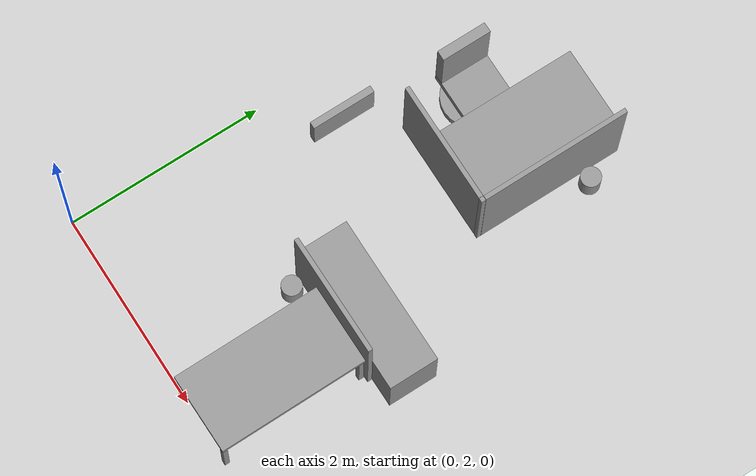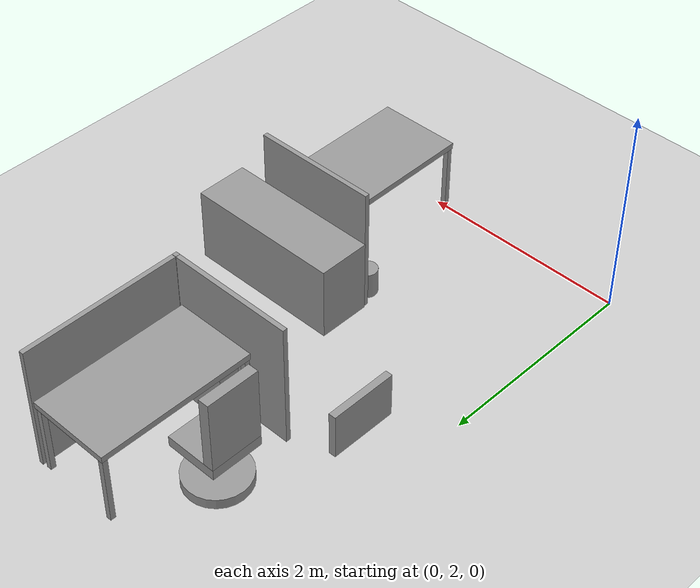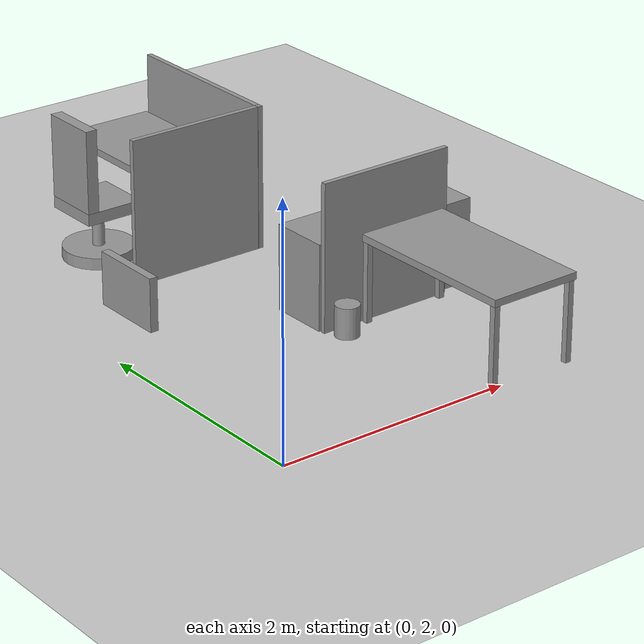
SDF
<sdf version="1.6">
 <world name="default">
  <model name="ground_plane">
   <static>1</static>
   <link name="link">
    <collision name="collision">
     <geometry><plane><normal>0 0 1</normal><size>100 100</size></plane></geometry>
     <surface><friction><ode><mu>100</mu><mu2>50</mu2></ode></friction></surface>
    </collision>
    <visual name="visual">
     <cast_shadows>0</cast_shadows>
     <geometry><plane><normal>0 0 1</normal><size>100 100</size></plane></geometry>
     <material>
      <script><uri>file://media/materials/scripts/gazebo.material</uri><name>Gazebo/Grey</name></script>
     </material>
    </visual>
   </link>
  </model>
  <model name="L8401_desk_clone_1">
   <link name="link_0">
    <pose>0.358907 -0.716347 -0.07 0 -0 3.14159</pose>
    <inertial>
     <mass>0.00540124</mass>
     <inertia>
      <ixx>0.00024509</ixx>
      <ixy>0</ixy>
      <ixz>0</ixz>
      <iyy>0.00024438</iyy>
      <iyz>0</iyz>
      <izz>6.68e-06</izz>
     </inertia>
    </inertial>
    <visual name="visual">
     <geometry><box><size>0.05 0.05 0.7</size></box></geometry>
     <material>
      <lighting>1</lighting>
      <script><uri>file://media/materials/scripts/gazebo.material</uri><name>Gazebo/Grey</name></script>
      <ambient>0.3 0.3 0.3 1</ambient>
      <diffuse>0.7 0.7 0.7 1</diffuse>
      <specular>0.01 0.01 0.01 1</specular>
      <emissive>0 0 0 1</emissive>
      <shader type="vertex"><normal_map>__default__</normal_map></shader>
     </material>
    </visual>
    <collision name="collision">
     <geometry><box><size>0.05 0.05 0.7</size></box></geometry>
     <surface>
      <friction>
       <ode><mu>1</mu><mu2>1</mu2><fdir1>0 0 0</fdir1><slip1>0</slip1><slip2>0</slip2></ode>
       <torsional>
        <coefficient>1</coefficient>
        <patch_radius>0</patch_radius>
        <surface_radius>0</surface_radius>
        <use_patch_radius>1</use_patch_radius>
        <ode><slip>0</slip></ode>
       </torsional>
      </friction>
      <bounce><restitution_coefficient>0</restitution_coefficient><threshold>1e+06</threshold></bounce>
      <contact>
       <collide_without_contact>0</collide_without_contact>
       <collide_without_contact_bitmask>1</collide_without_contact_bitmask>
       <collide_bitmask>1</collide_bitmask>
       <ode>
        <soft_cfm>0</soft_cfm>
        <soft_erp>0.2</soft_erp>
        <kp>1e+13</kp>
        <kd>1</kd>
        <max_vel>0.01</max_vel>
        <min_depth>0</min_depth>
       </ode>
       <bullet>
        <split_impulse>1</split_impulse>
        <split_impulse_penetration_threshold>-0.01</split_impulse_penetration_threshold>
        <soft_cfm>0</soft_cfm>
        <soft_erp>0.2</soft_erp>
        <kp>1e+13</kp>
        <kd>1</kd>
       </bullet>
      </contact>
     </surface>
    </collision>
   </link>
   <link name="link_0_clone">
    <pose>-0.368381 -0.716242 -0.07 0 -0 3.14159</pose>
    <inertial>
     <mass>0.00540124</mass>
     <inertia>
      <ixx>0.00024509</ixx>
      <ixy>0</ixy>
      <ixz>0</ixz>
      <iyy>0.00024438</iyy>
      <iyz>0</iyz>
      <izz>6.68e-06</izz>
     </inertia>
    </inertial>
    <visual name="visual">
     <geometry><box><size>0.05 0.05 0.7</size></box></geometry>
     <material>
      <lighting>1</lighting>
      <script><uri>file://media/materials/scripts/gazebo.material</uri><name>Gazebo/Grey</name></script>
      <ambient>0.3 0.3 0.3 1</ambient>
      <diffuse>0.7 0.7 0.7 1</diffuse>
      <specular>0.01 0.01 0.01 1</specular>
      <emissive>0 0 0 1</emissive>
      <shader type="vertex"><normal_map>__default__</normal_map></shader>
     </material>
    </visual>
    <collision name="collision">
     <geometry><box><size>0.05 0.05 0.7</size></box></geometry>
     <surface>
      <friction>
       <ode><mu>1</mu><mu2>1</mu2><fdir1>0 0 0</fdir1><slip1>0</slip1><slip2>0</slip2></ode>
       <torsional>
        <coefficient>1</coefficient>
        <patch_radius>0</patch_radius>
        <surface_radius>0</surface_radius>
        <use_patch_radius>1</use_patch_radius>
        <ode><slip>0</slip></ode>
       </torsional>
      </friction>
      <bounce><restitution_coefficient>0</restitution_coefficient><threshold>1e+06</threshold></bounce>
      <contact>
       <collide_without_contact>0</collide_without_contact>
       <collide_without_contact_bitmask>1</collide_without_contact_bitmask>
       <collide_bitmask>1</collide_bitmask>
       <ode>
        <soft_cfm>0</soft_cfm>
        <soft_erp>0.2</soft_erp>
        <kp>1e+13</kp>
        <kd>1</kd>
        <max_vel>0.01</max_vel>
        <min_depth>0</min_depth>
       </ode>
       <bullet>
        <split_impulse>1</split_impulse>
        <split_impulse_penetration_threshold>-0.01</split_impulse_penetration_threshold>
        <soft_cfm>0</soft_cfm>
        <soft_erp>0.2</soft_erp>
        <kp>1e+13</kp>
        <kd>1</kd>
       </bullet>
      </contact>
     </surface>
    </collision>
   </link>
   <link name="link_0_clone_0">
    <pose>-0.368174 0.719141 -0.07 0 -0 3.14159</pose>
    <inertial>
     <mass>0.00540124</mass>
     <inertia>
      <ixx>0.00024509</ixx>
      <ixy>0</ixy>
      <ixz>0</ixz>
      <iyy>0.00024438</iyy>
      <iyz>0</iyz>
      <izz>6.68e-06</izz>
     </inertia>
    </inertial>
    <visual name="visual">
     <geometry><box><size>0.05 0.05 0.7</size></box></geometry>
     <material>
      <lighting>1</lighting>
      <script><uri>file://media/materials/scripts/gazebo.material</uri><name>Gazebo/Grey</name></script>
      <ambient>0.3 0.3 0.3 1</ambient>
      <diffuse>0.7 0.7 0.7 1</diffuse>
      <specular>0.01 0.01 0.01 1</specular>
      <emissive>0 0 0 1</emissive>
      <shader type="vertex"><normal_map>__default__</normal_map></shader>
     </material>
    </visual>
    <collision name="collision">
     <geometry><box><size>0.05 0.05 0.7</size></box></geometry>
     <surface>
      <friction>
       <ode><mu>1</mu><mu2>1</mu2><fdir1>0 0 0</fdir1><slip1>0</slip1><slip2>0</slip2></ode>
       <torsional>
        <coefficient>1</coefficient>
        <patch_radius>0</patch_radius>
        <surface_radius>0</surface_radius>
        <use_patch_radius>1</use_patch_radius>
        <ode><slip>0</slip></ode>
       </torsional>
      </friction>
      <bounce><restitution_coefficient>0</restitution_coefficient><threshold>1e+06</threshold></bounce>
      <contact>
       <collide_without_contact>0</collide_without_contact>
       <collide_without_contact_bitmask>1</collide_without_contact_bitmask>
       <collide_bitmask>1</collide_bitmask>
       <ode>
        <soft_cfm>0</soft_cfm>
        <soft_erp>0.2</soft_erp>
        <kp>1e+13</kp>
        <kd>1</kd>
        <max_vel>0.01</max_vel>
        <min_depth>0</min_depth>
       </ode>
       <bullet>
        <split_impulse>1</split_impulse>
        <split_impulse_penetration_threshold>-0.01</split_impulse_penetration_threshold>
        <soft_cfm>0</soft_cfm>
        <soft_erp>0.2</soft_erp>
        <kp>1e+13</kp>
        <kd>1</kd>
       </bullet>
      </contact>
     </surface>
    </collision>
   </link>
   <link name="link_0_clone_1">
    <pose>0.359113 0.719037 -0.07 0 -0 3.14159</pose>
    <inertial>
     <mass>0.00540124</mass>
     <inertia>
      <ixx>0.00024509</ixx>
      <ixy>0</ixy>
      <ixz>0</ixz>
      <iyy>0.00024438</iyy>
      <iyz>0</iyz>
      <izz>6.68e-06</izz>
     </inertia>
    </inertial>
    <visual name="visual">
     <geometry><box><size>0.05 0.05 0.7</size></box></geometry>
     <material>
      <lighting>1</lighting>
      <script><uri>file://media/materials/scripts/gazebo.material</uri><name>Gazebo/Grey</name></script>
      <ambient>0.3 0.3 0.3 1</ambient>
      <diffuse>0.7 0.7 0.7 1</diffuse>
      <specular>0.01 0.01 0.01 1</specular>
      <emissive>0 0 0 1</emissive>
      <shader type="vertex"><normal_map>__default__</normal_map></shader>
     </material>
    </visual>
    <collision name="collision">
     <geometry><box><size>0.05 0.05 0.7</size></box></geometry>
     <surface>
      <friction>
       <ode><mu>1</mu><mu2>1</mu2><fdir1>0 0 0</fdir1><slip1>0</slip1><slip2>0</slip2></ode>
       <torsional>
        <coefficient>1</coefficient>
        <patch_radius>0</patch_radius>
        <surface_radius>0</surface_radius>
        <use_patch_radius>1</use_patch_radius>
        <ode><slip>0</slip></ode>
       </torsional>
      </friction>
      <bounce><restitution_coefficient>0</restitution_coefficient><threshold>1e+06</threshold></bounce>
      <contact>
       <collide_without_contact>0</collide_without_contact>
       <collide_without_contact_bitmask>1</collide_without_contact_bitmask>
       <collide_bitmask>1</collide_bitmask>
       <ode>
        <soft_cfm>0</soft_cfm>
        <soft_erp>0.2</soft_erp>
        <kp>1e+13</kp>
        <kd>1</kd>
        <max_vel>0.01</max_vel>
        <min_depth>0</min_depth>
       </ode>
       <bullet>
        <split_impulse>1</split_impulse>
        <split_impulse_penetration_threshold>-0.01</split_impulse_penetration_threshold>
        <soft_cfm>0</soft_cfm>
        <soft_erp>0.2</soft_erp>
        <kp>1e+13</kp>
        <kd>1</kd>
       </bullet>
      </contact>
     </surface>
    </collision>
   </link>
   <link name="link_1">
    <pose>-6e-05 0.001672 0.28 0 -0 0</pose>
    <inertial>
     <mass>0.0467165</mass>
     <inertia>
      <ixx>0.00864379</ixx>
      <ixy>0</ixy>
      <ixz>0</ixz>
      <iyy>0.00285842</iyy>
      <iyz>0</iyz>
      <izz>0.0114918</izz>
     </inertia>
    </inertial>
    <visual name="visual">
     <geometry><box><size>0.8 1.5 0.06</size></box></geometry>
     <material>
      <lighting>1</lighting>
      <script><uri>file://media/materials/scripts/gazebo.material</uri><name>Gazebo/Grey</name></script>
      <ambient>0.3 0.3 0.3 1</ambient>
      <diffuse>0.7 0.7 0.7 1</diffuse>
      <specular>0.01 0.01 0.01 1</specular>
      <emissive>0 0 0 1</emissive>
      <shader type="vertex"><normal_map>__default__</normal_map></shader>
     </material>
    </visual>
    <collision name="collision">
     <geometry><box><size>0.8 1.5 0.06</size></box></geometry>
     <surface>
      <friction>
       <ode><mu>1</mu><mu2>1</mu2><fdir1>0 0 0</fdir1><slip1>0</slip1><slip2>0</slip2></ode>
       <torsional>
        <coefficient>1</coefficient>
        <patch_radius>0</patch_radius>
        <surface_radius>0</surface_radius>
        <use_patch_radius>1</use_patch_radius>
        <ode><slip>0</slip></ode>
       </torsional>
      </friction>
      <bounce><restitution_coefficient>0</restitution_coefficient><threshold>1e+06</threshold></bounce>
      <contact>
       <collide_without_contact>0</collide_without_contact>
       <collide_without_contact_bitmask>1</collide_without_contact_bitmask>
       <collide_bitmask>1</collide_bitmask>
       <ode>
        <soft_cfm>0</soft_cfm>
        <soft_erp>0.2</soft_erp>
        <kp>1e+13</kp>
        <kd>1</kd>
        <max_vel>0.01</max_vel>
        <min_depth>0</min_depth>
       </ode>
       <bullet>
        <split_impulse>1</split_impulse>
        <split_impulse_penetration_threshold>-0.01</split_impulse_penetration_threshold>
        <soft_cfm>0</soft_cfm>
        <soft_erp>0.2</soft_erp>
        <kp>1e+13</kp>
        <kd>1</kd>
       </bullet>
      </contact>
     </surface>
    </collision>
   </link>
   <joint name="link_1_JOINT_0" type="fixed">
    <parent>link_1</parent>
    <child>link_0</child>
    <pose>0 0 0 -0.01 -0.02 -0.01</pose>
    <physics>
     <ode><limit><cfm>0</cfm><erp>0.2</erp></limit><suspension><cfm>0</cfm><erp>0.2</erp></suspension></ode>
    </physics>
   </joint>
   <joint name="link_1_JOINT_1" type="fixed">
    <parent>link_1</parent>
    <child>link_0_clone</child>
    <physics>
     <ode><limit><cfm>0</cfm><erp>0.2</erp></limit><suspension><cfm>0</cfm><erp>0.2</erp></suspension></ode>
    </physics>
   </joint>
   <joint name="link_1_JOINT_2" type="fixed">
    <parent>link_1</parent>
    <child>link_0_clone_1</child>
    <physics>
     <ode><limit><cfm>0</cfm><erp>0.2</erp></limit><suspension><cfm>0</cfm><erp>0.2</erp></suspension></ode>
    </physics>
   </joint>
   <joint name="link_1_JOINT_3" type="fixed">
    <parent>link_1</parent>
    <child>link_0_clone_0</child>
    <physics>
     <ode><limit><cfm>0</cfm><erp>0.2</erp></limit><suspension><cfm>0</cfm><erp>0.2</erp></suspension></ode>
    </physics>
   </joint>
   <static>1</static>
   <pose>2.27935 2.7194 0.419998 2e-06 2e-06 0.006835</pose>
  </model>
  <model name="L8401_desk_clone_4">
   <link name="link_0">
    <pose>0.358907 -0.716347 -0.07 0 -0 3.14159</pose>
    <inertial>
     <mass>0.00540124</mass>
     <inertia>
      <ixx>0.00024509</ixx>
      <ixy>0</ixy>
      <ixz>0</ixz>
      <iyy>0.00024438</iyy>
      <iyz>0</iyz>
      <izz>6.68e-06</izz>
     </inertia>
    </inertial>
    <visual name="visual">
     <geometry><box><size>0.05 0.05 0.7</size></box></geometry>
     <material>
      <lighting>1</lighting>
      <script><uri>file://media/materials/scripts/gazebo.material</uri><name>Gazebo/Grey</name></script>
      <ambient>0.3 0.3 0.3 1</ambient>
      <diffuse>0.7 0.7 0.7 1</diffuse>
      <specular>0.01 0.01 0.01 1</specular>
      <emissive>0 0 0 1</emissive>
      <shader type="vertex"><normal_map>__default__</normal_map></shader>
     </material>
    </visual>
    <collision name="collision">
     <geometry><box><size>0.05 0.05 0.7</size></box></geometry>
     <surface>
      <friction>
       <ode><mu>1</mu><mu2>1</mu2><fdir1>0 0 0</fdir1><slip1>0</slip1><slip2>0</slip2></ode>
       <torsional>
        <coefficient>1</coefficient>
        <patch_radius>0</patch_radius>
        <surface_radius>0</surface_radius>
        <use_patch_radius>1</use_patch_radius>
        <ode><slip>0</slip></ode>
       </torsional>
      </friction>
      <bounce><restitution_coefficient>0</restitution_coefficient><threshold>1e+06</threshold></bounce>
      <contact>
       <collide_without_contact>0</collide_without_contact>
       <collide_without_contact_bitmask>1</collide_without_contact_bitmask>
       <collide_bitmask>1</collide_bitmask>
       <ode>
        <soft_cfm>0</soft_cfm>
        <soft_erp>0.2</soft_erp>
        <kp>1e+13</kp>
        <kd>1</kd>
        <max_vel>0.01</max_vel>
        <min_depth>0</min_depth>
       </ode>
       <bullet>
        <split_impulse>1</split_impulse>
        <split_impulse_penetration_threshold>-0.01</split_impulse_penetration_threshold>
        <soft_cfm>0</soft_cfm>
        <soft_erp>0.2</soft_erp>
        <kp>1e+13</kp>
        <kd>1</kd>
       </bullet>
      </contact>
     </surface>
    </collision>
   </link>
   <link name="link_0_clone">
    <pose>-0.368381 -0.716242 -0.07 0 -0 3.14159</pose>
    <inertial>
     <mass>0.00540124</mass>
     <inertia>
      <ixx>0.00024509</ixx>
      <ixy>0</ixy>
      <ixz>0</ixz>
      <iyy>0.00024438</iyy>
      <iyz>0</iyz>
      <izz>6.68e-06</izz>
     </inertia>
    </inertial>
    <visual name="visual">
     <geometry><box><size>0.05 0.05 0.7</size></box></geometry>
     <material>
      <lighting>1</lighting>
      <script><uri>file://media/materials/scripts/gazebo.material</uri><name>Gazebo/Grey</name></script>
      <ambient>0.3 0.3 0.3 1</ambient>
      <diffuse>0.7 0.7 0.7 1</diffuse>
      <specular>0.01 0.01 0.01 1</specular>
      <emissive>0 0 0 1</emissive>
      <shader type="vertex"><normal_map>__default__</normal_map></shader>
     </material>
    </visual>
    <collision name="collision">
     <geometry><box><size>0.05 0.05 0.7</size></box></geometry>
     <surface>
      <friction>
       <ode><mu>1</mu><mu2>1</mu2><fdir1>0 0 0</fdir1><slip1>0</slip1><slip2>0</slip2></ode>
       <torsional>
        <coefficient>1</coefficient>
        <patch_radius>0</patch_radius>
        <surface_radius>0</surface_radius>
        <use_patch_radius>1</use_patch_radius>
        <ode><slip>0</slip></ode>
       </torsional>
      </friction>
      <bounce><restitution_coefficient>0</restitution_coefficient><threshold>1e+06</threshold></bounce>
      <contact>
       <collide_without_contact>0</collide_without_contact>
       <collide_without_contact_bitmask>1</collide_without_contact_bitmask>
       <collide_bitmask>1</collide_bitmask>
       <ode>
        <soft_cfm>0</soft_cfm>
        <soft_erp>0.2</soft_erp>
        <kp>1e+13</kp>
        <kd>1</kd>
        <max_vel>0.01</max_vel>
        <min_depth>0</min_depth>
       </ode>
       <bullet>
        <split_impulse>1</split_impulse>
        <split_impulse_penetration_threshold>-0.01</split_impulse_penetration_threshold>
        <soft_cfm>0</soft_cfm>
        <soft_erp>0.2</soft_erp>
        <kp>1e+13</kp>
        <kd>1</kd>
       </bullet>
      </contact>
     </surface>
    </collision>
   </link>
   <link name="link_0_clone_0">
    <pose>-0.368174 0.719141 -0.07 0 -0 3.14159</pose>
    <inertial>
     <mass>0.00540124</mass>
     <inertia>
      <ixx>0.00024509</ixx>
      <ixy>0</ixy>
      <ixz>0</ixz>
      <iyy>0.00024438</iyy>
      <iyz>0</iyz>
      <izz>6.68e-06</izz>
     </inertia>
    </inertial>
    <visual name="visual">
     <geometry><box><size>0.05 0.05 0.7</size></box></geometry>
     <material>
      <lighting>1</lighting>
      <script><uri>file://media/materials/scripts/gazebo.material</uri><name>Gazebo/Grey</name></script>
      <ambient>0.3 0.3 0.3 1</ambient>
      <diffuse>0.7 0.7 0.7 1</diffuse>
      <specular>0.01 0.01 0.01 1</specular>
      <emissive>0 0 0 1</emissive>
      <shader type="vertex"><normal_map>__default__</normal_map></shader>
     </material>
    </visual>
    <collision name="collision">
     <geometry><box><size>0.05 0.05 0.7</size></box></geometry>
     <surface>
      <friction>
       <ode><mu>1</mu><mu2>1</mu2><fdir1>0 0 0</fdir1><slip1>0</slip1><slip2>0</slip2></ode>
       <torsional>
        <coefficient>1</coefficient>
        <patch_radius>0</patch_radius>
        <surface_radius>0</surface_radius>
        <use_patch_radius>1</use_patch_radius>
        <ode><slip>0</slip></ode>
       </torsional>
      </friction>
      <bounce><restitution_coefficient>0</restitution_coefficient><threshold>1e+06</threshold></bounce>
      <contact>
       <collide_without_contact>0</collide_without_contact>
       <collide_without_contact_bitmask>1</collide_without_contact_bitmask>
       <collide_bitmask>1</collide_bitmask>
       <ode>
        <soft_cfm>0</soft_cfm>
        <soft_erp>0.2</soft_erp>
        <kp>1e+13</kp>
        <kd>1</kd>
        <max_vel>0.01</max_vel>
        <min_depth>0</min_depth>
       </ode>
       <bullet>
        <split_impulse>1</split_impulse>
        <split_impulse_penetration_threshold>-0.01</split_impulse_penetration_threshold>
        <soft_cfm>0</soft_cfm>
        <soft_erp>0.2</soft_erp>
        <kp>1e+13</kp>
        <kd>1</kd>
       </bullet>
      </contact>
     </surface>
    </collision>
   </link>
   <link name="link_0_clone_1">
    <pose>0.359113 0.719037 -0.07 0 -0 3.14159</pose>
    <inertial>
     <mass>0.00540124</mass>
     <inertia>
      <ixx>0.00024509</ixx>
      <ixy>0</ixy>
      <ixz>0</ixz>
      <iyy>0.00024438</iyy>
      <iyz>0</iyz>
      <izz>6.68e-06</izz>
     </inertia>
    </inertial>
    <visual name="visual">
     <geometry><box><size>0.05 0.05 0.7</size></box></geometry>
     <material>
      <lighting>1</lighting>
      <script><uri>file://media/materials/scripts/gazebo.material</uri><name>Gazebo/Grey</name></script>
      <ambient>0.3 0.3 0.3 1</ambient>
      <diffuse>0.7 0.7 0.7 1</diffuse>
      <specular>0.01 0.01 0.01 1</specular>
      <emissive>0 0 0 1</emissive>
      <shader type="vertex"><normal_map>__default__</normal_map></shader>
     </material>
    </visual>
    <collision name="collision">
     <geometry><box><size>0.05 0.05 0.7</size></box></geometry>
     <surface>
      <friction>
       <ode><mu>1</mu><mu2>1</mu2><fdir1>0 0 0</fdir1><slip1>0</slip1><slip2>0</slip2></ode>
       <torsional>
        <coefficient>1</coefficient>
        <patch_radius>0</patch_radius>
        <surface_radius>0</surface_radius>
        <use_patch_radius>1</use_patch_radius>
        <ode><slip>0</slip></ode>
       </torsional>
      </friction>
      <bounce><restitution_coefficient>0</restitution_coefficient><threshold>1e+06</threshold></bounce>
      <contact>
       <collide_without_contact>0</collide_without_contact>
       <collide_without_contact_bitmask>1</collide_without_contact_bitmask>
       <collide_bitmask>1</collide_bitmask>
       <ode>
        <soft_cfm>0</soft_cfm>
        <soft_erp>0.2</soft_erp>
        <kp>1e+13</kp>
        <kd>1</kd>
        <max_vel>0.01</max_vel>
        <min_depth>0</min_depth>
       </ode>
       <bullet>
        <split_impulse>1</split_impulse>
        <split_impulse_penetration_threshold>-0.01</split_impulse_penetration_threshold>
        <soft_cfm>0</soft_cfm>
        <soft_erp>0.2</soft_erp>
        <kp>1e+13</kp>
        <kd>1</kd>
       </bullet>
      </contact>
     </surface>
    </collision>
   </link>
   <link name="link_1">
    <pose>-6e-05 0.001672 0.28 0 -0 0</pose>
    <inertial>
     <mass>0.0467165</mass>
     <inertia>
      <ixx>0.00864379</ixx>
      <ixy>0</ixy>
      <ixz>0</ixz>
      <iyy>0.00285842</iyy>
      <iyz>0</iyz>
      <izz>0.0114918</izz>
     </inertia>
    </inertial>
    <visual name="visual">
     <geometry><box><size>0.8 1.5 0.06</size></box></geometry>
     <material>
      <lighting>1</lighting>
      <script><uri>file://media/materials/scripts/gazebo.material</uri><name>Gazebo/Grey</name></script>
      <ambient>0.3 0.3 0.3 1</ambient>
      <diffuse>0.7 0.7 0.7 1</diffuse>
      <specular>0.01 0.01 0.01 1</specular>
      <emissive>0 0 0 1</emissive>
      <shader type="vertex"><normal_map>__default__</normal_map></shader>
     </material>
    </visual>
    <collision name="collision">
     <geometry><box><size>0.8 1.5 0.06</size></box></geometry>
     <surface>
      <friction>
       <ode><mu>1</mu><mu2>1</mu2><fdir1>0 0 0</fdir1><slip1>0</slip1><slip2>0</slip2></ode>
       <torsional>
        <coefficient>1</coefficient>
        <patch_radius>0</patch_radius>
        <surface_radius>0</surface_radius>
        <use_patch_radius>1</use_patch_radius>
        <ode><slip>0</slip></ode>
       </torsional>
      </friction>
      <bounce><restitution_coefficient>0</restitution_coefficient><threshold>1e+06</threshold></bounce>
      <contact>
       <collide_without_contact>0</collide_without_contact>
       <collide_without_contact_bitmask>1</collide_without_contact_bitmask>
       <collide_bitmask>1</collide_bitmask>
       <ode>
        <soft_cfm>0</soft_cfm>
        <soft_erp>0.2</soft_erp>
        <kp>1e+13</kp>
        <kd>1</kd>
        <max_vel>0.01</max_vel>
        <min_depth>0</min_depth>
       </ode>
       <bullet>
        <split_impulse>1</split_impulse>
        <split_impulse_penetration_threshold>-0.01</split_impulse_penetration_threshold>
        <soft_cfm>0</soft_cfm>
        <soft_erp>0.2</soft_erp>
        <kp>1e+13</kp>
        <kd>1</kd>
       </bullet>
      </contact>
     </surface>
    </collision>
   </link>
   <joint name="link_1_JOINT_0" type="fixed">
    <parent>link_1</parent>
    <child>link_0</child>
    <pose>0 0 0 -0.01 -0.02 -0.01</pose>
    <physics>
     <ode><limit><cfm>0</cfm><erp>0.2</erp></limit><suspension><cfm>0</cfm><erp>0.2</erp></suspension></ode>
    </physics>
   </joint>
   <joint name="link_1_JOINT_1" type="fixed">
    <parent>link_1</parent>
    <child>link_0_clone</child>
    <physics>
     <ode><limit><cfm>0</cfm><erp>0.2</erp></limit><suspension><cfm>0</cfm><erp>0.2</erp></suspension></ode>
    </physics>
   </joint>
   <joint name="link_1_JOINT_2" type="fixed">
    <parent>link_1</parent>
    <child>link_0_clone_1</child>
    <physics>
     <ode><limit><cfm>0</cfm><erp>0.2</erp></limit><suspension><cfm>0</cfm><erp>0.2</erp></suspension></ode>
    </physics>
   </joint>
   <joint name="link_1_JOINT_3" type="fixed">
    <parent>link_1</parent>
    <child>link_0_clone_0</child>
    <physics>
     <ode><limit><cfm>0</cfm><erp>0.2</erp></limit><suspension><cfm>0</cfm><erp>0.2</erp></suspension></ode>
    </physics>
   </joint>
   <static>1</static>
   <pose>1.65203 5.83864 0.420003 3e-06 2e-06 -0.00181</pose>
  </model>
  <model name="L8401_panel_B_0_clone_1">
   <link name="link_0">
    <pose>0 0 0 0 -0 1.57</pose>
    <inertial>
     <mass>1</mass>
     <inertia>
      <ixx>0.166667</ixx>
      <ixy>0</ixy>
      <ixz>0</ixz>
      <iyy>0.166667</iyy>
      <iyz>0</iyz>
      <izz>0.166667</izz>
     </inertia>
    </inertial>
    <visual name="visual">
     <geometry><box><size>1.5 0.045 1.23</size></box></geometry>
     <material>
      <lighting>1</lighting>
      <script><uri>file://media/materials/scripts/gazebo.material</uri><name>Gazebo/Grey</name></script>
      <ambient>0.3 0.3 0.3 1</ambient>
      <diffuse>0.7 0.7 0.7 1</diffuse>
      <specular>0.01 0.01 0.01 1</specular>
      <emissive>0 0 0 1</emissive>
      <shader type="vertex"><normal_map>__default__</normal_map></shader>
     </material>
    </visual>
    <collision name="collision">
     <geometry><box><size>1.5 0.045 1.23</size></box></geometry>
     <surface>
      <friction>
       <ode><mu>1</mu><mu2>1</mu2><fdir1>0 0 0</fdir1><slip1>0</slip1><slip2>0</slip2></ode>
       <torsional>
        <coefficient>1</coefficient>
        <patch_radius>0</patch_radius>
        <surface_radius>0</surface_radius>
        <use_patch_radius>1</use_patch_radius>
        <ode><slip>0</slip></ode>
       </torsional>
      </friction>
      <bounce><restitution_coefficient>0</restitution_coefficient><threshold>1e+06</threshold></bounce>
      <contact>
       <collide_without_contact>0</collide_without_contact>
       <collide_without_contact_bitmask>1</collide_without_contact_bitmask>
       <collide_bitmask>1</collide_bitmask>
       <ode>
        <soft_cfm>0</soft_cfm>
        <soft_erp>0.2</soft_erp>
        <kp>1e+13</kp>
        <kd>1</kd>
        <max_vel>0.01</max_vel>
        <min_depth>0</min_depth>
       </ode>
       <bullet>
        <split_impulse>1</split_impulse>
        <split_impulse_penetration_threshold>-0.01</split_impulse_penetration_threshold>
        <soft_cfm>0</soft_cfm>
        <soft_erp>0.2</soft_erp>
        <kp>1e+13</kp>
        <kd>1</kd>
       </bullet>
      </contact>
     </surface>
    </collision>
   </link>
   <static>1</static>
   <pose>2.09722 5.84075 0.615 0 -0 0.0005</pose>
  </model>
  <model name="L8401_panel_A_0_clone_0">
   <link name="link_0">
    <inertial>
     <mass>1</mass>
     <inertia>
      <ixx>0.166667</ixx>
      <ixy>0</ixy>
      <ixz>0</ixz>
      <iyy>0.166667</iyy>
      <iyz>0</iyz>
      <izz>0.166667</izz>
     </inertia>
    </inertial>
    <visual name="visual">
     <geometry><box><size>1.2 0.045 1.23</size></box></geometry>
     <material>
      <lighting>1</lighting>
      <script><uri>file://media/materials/scripts/gazebo.material</uri><name>Gazebo/Grey</name></script>
      <ambient>0.3 0.3 0.3 1</ambient>
      <diffuse>0.7 0.7 0.7 1</diffuse>
      <specular>0.01 0.01 0.01 1</specular>
      <emissive>0 0 0 1</emissive>
      <shader type="vertex"><normal_map>__default__</normal_map></shader>
     </material>
    </visual>
    <collision name="collision">
     <geometry><box><size>1.2 0.045 1.23</size></box></geometry>
     <surface>
      <friction>
       <ode><mu>1</mu><mu2>1</mu2><fdir1>0 0 0</fdir1><slip1>0</slip1><slip2>0</slip2></ode>
       <torsional>
        <coefficient>1</coefficient>
        <patch_radius>0</patch_radius>
        <surface_radius>0</surface_radius>
        <use_patch_radius>1</use_patch_radius>
        <ode><slip>0</slip></ode>
       </torsional>
      </friction>
      <bounce><restitution_coefficient>0</restitution_coefficient><threshold>1e+06</threshold></bounce>
      <contact>
       <collide_without_contact>0</collide_without_contact>
       <collide_without_contact_bitmask>1</collide_without_contact_bitmask>
       <collide_bitmask>1</collide_bitmask>
       <ode>
        <soft_cfm>0</soft_cfm>
        <soft_erp>0.2</soft_erp>
        <kp>1e+13</kp>
        <kd>1</kd>
        <max_vel>0.01</max_vel>
        <min_depth>0</min_depth>
       </ode>
       <bullet>
        <split_impulse>1</split_impulse>
        <split_impulse_penetration_threshold>-0.01</split_impulse_penetration_threshold>
        <soft_cfm>0</soft_cfm>
        <soft_erp>0.2</soft_erp>
        <kp>1e+13</kp>
        <kd>1</kd>
       </bullet>
      </contact>
     </surface>
    </collision>
   </link>
   <static>1</static>
   <pose>2.1146 3.4938 0.614998 2e-06 -3e-06 0.005175</pose>
  </model>
  <model name="L8401_panel_A_0_clone_2">
   <link name="link_0">
    <inertial>
     <mass>1</mass>
     <inertia>
      <ixx>0.166667</ixx>
      <ixy>0</ixy>
      <ixz>0</ixz>
      <iyy>0.166667</iyy>
      <iyz>0</iyz>
      <izz>0.166667</izz>
     </inertia>
    </inertial>
    <visual name="visual">
     <geometry><box><size>1.2 0.045 1.23</size></box></geometry>
     <material>
      <lighting>1</lighting>
      <script><uri>file://media/materials/scripts/gazebo.material</uri><name>Gazebo/Grey</name></script>
      <ambient>0.3 0.3 0.3 1</ambient>
      <diffuse>0.7 0.7 0.7 1</diffuse>
      <specular>0.01 0.01 0.01 1</specular>
      <emissive>0 0 0 1</emissive>
      <shader type="vertex"><normal_map>__default__</normal_map></shader>
     </material>
    </visual>
    <collision name="collision">
     <geometry><box><size>1.2 0.045 1.23</size></box></geometry>
     <surface>
      <friction>
       <ode><mu>1</mu><mu2>1</mu2><fdir1>0 0 0</fdir1><slip1>0</slip1><slip2>0</slip2></ode>
       <torsional>
        <coefficient>1</coefficient>
        <patch_radius>0</patch_radius>
        <surface_radius>0</surface_radius>
        <use_patch_radius>1</use_patch_radius>
        <ode><slip>0</slip></ode>
       </torsional>
      </friction>
      <bounce><restitution_coefficient>0</restitution_coefficient><threshold>1e+06</threshold></bounce>
      <contact>
       <collide_without_contact>0</collide_without_contact>
       <collide_without_contact_bitmask>1</collide_without_contact_bitmask>
       <collide_bitmask>1</collide_bitmask>
       <ode>
        <soft_cfm>0</soft_cfm>
        <soft_erp>0.2</soft_erp>
        <kp>1e+13</kp>
        <kd>1</kd>
        <max_vel>0.01</max_vel>
        <min_depth>0</min_depth>
       </ode>
       <bullet>
        <split_impulse>1</split_impulse>
        <split_impulse_penetration_threshold>-0.01</split_impulse_penetration_threshold>
        <soft_cfm>0</soft_cfm>
        <soft_erp>0.2</soft_erp>
        <kp>1e+13</kp>
        <kd>1</kd>
       </bullet>
      </contact>
     </surface>
    </collision>
   </link>
   <static>1</static>
   <pose>1.4722 5.06743 0.614991 2e-06 0 -0.000597</pose>
  </model>
  <model name="L8401_panel_C_0_clone_1">
   <link name="link_0">
    <inertial>
     <mass>1</mass>
     <inertia>
      <ixx>0.166667</ixx>
      <ixy>0</ixy>
      <ixz>0</ixz>
      <iyy>0.166667</iyy>
      <iyz>0</iyz>
      <izz>0.166667</izz>
     </inertia>
    </inertial>
    <visual name="visual">
     <geometry><box><size>0.045 0.045 1.23</size></box></geometry>
     <material>
      <lighting>1</lighting>
      <script><uri>file://media/materials/scripts/gazebo.material</uri><name>Gazebo/Grey</name></script>
      <ambient>0.3 0.3 0.3 1</ambient>
      <diffuse>0.7 0.7 0.7 1</diffuse>
      <specular>0.01 0.01 0.01 1</specular>
      <emissive>0 0 0 1</emissive>
      <shader type="vertex"><normal_map>__default__</normal_map></shader>
     </material>
    </visual>
    <collision name="collision">
     <geometry><box><size>0.045 0.045 1.23</size></box></geometry>
     <surface>
      <friction>
       <ode><mu>1</mu><mu2>1</mu2><fdir1>0 0 0</fdir1><slip1>0</slip1><slip2>0</slip2></ode>
       <torsional>
        <coefficient>1</coefficient>
        <patch_radius>0</patch_radius>
        <surface_radius>0</surface_radius>
        <use_patch_radius>1</use_patch_radius>
        <ode><slip>0</slip></ode>
       </torsional>
      </friction>
      <bounce><restitution_coefficient>0</restitution_coefficient><threshold>1e+06</threshold></bounce>
      <contact>
       <collide_without_contact>0</collide_without_contact>
       <collide_without_contact_bitmask>1</collide_without_contact_bitmask>
       <collide_bitmask>1</collide_bitmask>
       <ode>
        <soft_cfm>0</soft_cfm>
        <soft_erp>0.2</soft_erp>
        <kp>1e+13</kp>
        <kd>1</kd>
        <max_vel>0.01</max_vel>
        <min_depth>0</min_depth>
       </ode>
       <bullet>
        <split_impulse>1</split_impulse>
        <split_impulse_penetration_threshold>-0.01</split_impulse_penetration_threshold>
        <soft_cfm>0</soft_cfm>
        <soft_erp>0.2</soft_erp>
        <kp>1e+13</kp>
        <kd>1</kd>
       </bullet>
      </contact>
     </surface>
    </collision>
   </link>
   <static>1</static>
   <pose>2.0967 5.0664 0.615 1.1e-05 3e-06 0.000411</pose>
  </model>
  <model name="L8401_drawer_C">
   <link name="link">
    <inertial>
     <mass>1</mass>
     <inertia>
      <ixx>0.166667</ixx>
      <ixy>0</ixy>
      <ixz>0</ixz>
      <iyy>0.166667</iyy>
      <iyz>0</iyz>
      <izz>0.166667</izz>
     </inertia>
    </inertial>
    <visual name="visual">
     <geometry><box><size>1.5 0.5 0.72</size></box></geometry>
     <material>
      <script><name>Gazebo/Grey</name><uri>file://media/materials/scripts/gazebo.material</uri></script>
      <ambient>0.3 0.3 0.3 1</ambient>
      <diffuse>0.7 0.7 0.7 1</diffuse>
      <specular>0.01 0.01 0.01 1</specular>
      <emissive>0 0 0 1</emissive>
      <shader type="vertex"><normal_map>__default__</normal_map></shader>
     </material>
    </visual>
    <collision name="collision">
     <geometry><box><size>1.5 0.5 0.72</size></box></geometry>
     <surface>
      <friction>
       <ode><mu>1</mu><mu2>1</mu2><fdir1>0 0 0</fdir1><slip1>0</slip1><slip2>0</slip2></ode>
       <torsional>
        <coefficient>1</coefficient>
        <patch_radius>0</patch_radius>
        <surface_radius>0</surface_radius>
        <use_patch_radius>1</use_patch_radius>
        <ode><slip>0</slip></ode>
       </torsional>
      </friction>
      <bounce><restitution_coefficient>0</restitution_coefficient><threshold>1e+06</threshold></bounce>
      <contact>
       <collide_without_contact>0</collide_without_contact>
       <collide_without_contact_bitmask>1</collide_without_contact_bitmask>
       <collide_bitmask>1</collide_bitmask>
       <ode>
        <soft_cfm>0</soft_cfm>
        <soft_erp>0.2</soft_erp>
        <kp>1e+13</kp>
        <kd>1</kd>
        <max_vel>0.01</max_vel>
        <min_depth>0</min_depth>
       </ode>
       <bullet>
        <split_impulse>1</split_impulse>
        <split_impulse_penetration_threshold>-0.01</split_impulse_penetration_threshold>
        <soft_cfm>0</soft_cfm>
        <soft_erp>0.2</soft_erp>
        <kp>1e+13</kp>
        <kd>1</kd>
       </bullet>
      </contact>
     </surface>
    </collision>
   </link>
   <static>1</static>
   <pose>2.25362 3.7728 0.359999 -3e-06 -0 0.001591</pose>
  </model>
  <model name="L8401_computer_clone_clone">
   <link name="link">
    <inertial>
     <mass>1</mass>
     <inertia>
      <ixx>0.166667</ixx>
      <ixy>0</ixy>
      <ixz>0</ixz>
      <iyy>0.166667</iyy>
      <iyz>0</iyz>
      <izz>0.166667</izz>
     </inertia>
    </inertial>
    <visual name="visual">
     <geometry><box><size>0.5 0.2 0.5</size></box></geometry>
     <material>
      <script><name>Gazebo/Grey</name><uri>file://media/materials/scripts/gazebo.material</uri></script>
      <ambient>0.3 0.3 0.3 1</ambient>
      <diffuse>0.7 0.7 0.7 1</diffuse>
      <specular>0.01 0.01 0.01 1</specular>
      <emissive>0 0 0 1</emissive>
      <shader type="vertex"><normal_map>__default__</normal_map></shader>
     </material>
    </visual>
    <collision name="collision">
     <geometry><box><size>0.5 0.2 0.5</size></box></geometry>
     <surface>
      <friction>
       <ode><mu>1</mu><mu2>1</mu2><fdir1>0 0 0</fdir1><slip1>0</slip1><slip2>0</slip2></ode>
       <torsional>
        <coefficient>1</coefficient>
        <patch_radius>0</patch_radius>
        <surface_radius>0</surface_radius>
        <use_patch_radius>1</use_patch_radius>
        <ode><slip>0</slip></ode>
       </torsional>
      </friction>
      <bounce><restitution_coefficient>0</restitution_coefficient><threshold>1e+06</threshold></bounce>
      <contact>
       <collide_without_contact>0</collide_without_contact>
       <collide_without_contact_bitmask>1</collide_without_contact_bitmask>
       <collide_bitmask>1</collide_bitmask>
       <ode>
        <soft_cfm>0</soft_cfm>
        <soft_erp>0.2</soft_erp>
        <kp>1e+13</kp>
        <kd>1</kd>
        <max_vel>0.01</max_vel>
        <min_depth>0</min_depth>
       </ode>
       <bullet>
        <split_impulse>1</split_impulse>
        <split_impulse_penetration_threshold>-0.01</split_impulse_penetration_threshold>
        <soft_cfm>0</soft_cfm>
        <soft_erp>0.2</soft_erp>
        <kp>1e+13</kp>
        <kd>1</kd>
       </bullet>
      </contact>
     </surface>
    </collision>
   </link>
   <static>1</static>
   <pose>1.6449 5.20094 0.25 0 0 -0.000292</pose>
  </model>
  <model name="L8401_trash_bin_clone_0">
   <link name="link">
    <inertial>
     <mass>1</mass>
     <inertia><ixx>0.145833</ixx><ixy>0</ixy><ixz>0</ixz><iyy>0.145833</iyy><iyz>0</iyz><izz>0.125</izz></inertia>
    </inertial>
    <visual name="visual">
     <geometry><cylinder><radius>0.1</radius><length>0.26</length></cylinder></geometry>
     <material>
      <script><name>Gazebo/Grey</name><uri>file://media/materials/scripts/gazebo.material</uri></script>
      <ambient>0.3 0.3 0.3 1</ambient>
      <diffuse>0.7 0.7 0.7 1</diffuse>
      <specular>0.01 0.01 0.01 1</specular>
      <emissive>0 0 0 1</emissive>
      <shader type="vertex"><normal_map>__default__</normal_map></shader>
     </material>
    </visual>
    <collision name="collision">
     <geometry><cylinder><radius>0.1</radius><length>0.26</length></cylinder></geometry>
     <surface>
      <friction>
       <ode><mu>1</mu><mu2>1</mu2><fdir1>0 0 0</fdir1><slip1>0</slip1><slip2>0</slip2></ode>
       <torsional>
        <coefficient>1</coefficient>
        <patch_radius>0</patch_radius>
        <surface_radius>0</surface_radius>
        <use_patch_radius>1</use_patch_radius>
        <ode><slip>0</slip></ode>
       </torsional>
      </friction>
      <bounce><restitution_coefficient>0</restitution_coefficient><threshold>1e+06</threshold></bounce>
      <contact>
       <collide_without_contact>0</collide_without_contact>
       <collide_without_contact_bitmask>1</collide_without_contact_bitmask>
       <collide_bitmask>1</collide_bitmask>
       <ode>
        <soft_cfm>0</soft_cfm>
        <soft_erp>0.2</soft_erp>
        <kp>1e+13</kp>
        <kd>1</kd>
        <max_vel>0.01</max_vel>
        <min_depth>0</min_depth>
       </ode>
       <bullet>
        <split_impulse>1</split_impulse>
        <split_impulse_penetration_threshold>-0.01</split_impulse_penetration_threshold>
        <soft_cfm>0</soft_cfm>
        <soft_erp>0.2</soft_erp>
        <kp>1e+13</kp>
        <kd>1</kd>
       </bullet>
      </contact>
     </surface>
    </collision>
   </link>
   <static>1</static>
   <pose>1.63915 3.34814 0.129999 0 -0 0</pose>
  </model>
  <model name="L8401_heater_A">
   <link name="link">
    <inertial>
     <mass>1</mass>
     <inertia>
      <ixx>0.166667</ixx>
      <ixy>0</ixy>
      <ixz>0</ixz>
      <iyy>0.166667</iyy>
      <iyz>0</iyz>
      <izz>0.166667</izz>
     </inertia>
    </inertial>
    <visual name="visual">
     <geometry><box><size>0.65 0.07 0.45</size></box></geometry>
     <material>
      <script><name>Gazebo/Grey</name><uri>file://media/materials/scripts/gazebo.material</uri></script>
      <ambient>0.3 0.3 0.3 1</ambient>
      <diffuse>0.7 0.7 0.7 1</diffuse>
      <specular>0.01 0.01 0.01 1</specular>
      <emissive>0 0 0 1</emissive>
      <shader type="vertex"><normal_map>__default__</normal_map></shader>
     </material>
    </visual>
    <collision name="collision">
     <geometry><box><size>0.65 0.07 0.45</size></box></geometry>
     <surface>
      <friction>
       <ode><mu>1</mu><mu2>1</mu2><fdir1>0 0 0</fdir1><slip1>0</slip1><slip2>0</slip2></ode>
       <torsional>
        <coefficient>1</coefficient>
        <patch_radius>0</patch_radius>
        <surface_radius>0</surface_radius>
        <use_patch_radius>1</use_patch_radius>
        <ode><slip>0</slip></ode>
       </torsional>
      </friction>
      <bounce><restitution_coefficient>0</restitution_coefficient><threshold>1e+06</threshold></bounce>
      <contact>
       <collide_without_contact>0</collide_without_contact>
       <collide_without_contact_bitmask>1</collide_without_contact_bitmask>
       <collide_bitmask>1</collide_bitmask>
       <ode>
        <soft_cfm>0</soft_cfm>
        <soft_erp>0.2</soft_erp>
        <kp>1e+13</kp>
        <kd>1</kd>
        <max_vel>0.01</max_vel>
        <min_depth>0</min_depth>
       </ode>
       <bullet>
        <split_impulse>1</split_impulse>
        <split_impulse_penetration_threshold>-0.01</split_impulse_penetration_threshold>
        <soft_cfm>0</soft_cfm>
        <soft_erp>0.2</soft_erp>
        <kp>1e+13</kp>
        <kd>1</kd>
       </bullet>
      </contact>
     </surface>
    </collision>
   </link>
   <static>1</static>
   <pose>0.515126 4.60961 0.224998 -1e-06 7e-06 1.57</pose>
  </model>
  <model name="L8401_trash_bin_clone_1">
   <link name="link">
    <inertial>
     <mass>1</mass>
     <inertia><ixx>0.145833</ixx><ixy>0</ixy><ixz>0</ixz><iyy>0.145833</iyy><iyz>0</iyz><izz>0.125</izz></inertia>
    </inertial>
    <visual name="visual">
     <geometry><cylinder><radius>0.1</radius><length>0.26</length></cylinder></geometry>
     <material>
      <script><name>Gazebo/Grey</name><uri>file://media/materials/scripts/gazebo.material</uri></script>
      <ambient>0.3 0.3 0.3 1</ambient>
      <diffuse>0.7 0.7 0.7 1</diffuse>
      <specular>0.01 0.01 0.01 1</specular>
      <emissive>0 0 0 1</emissive>
      <shader type="vertex"><normal_map>__default__</normal_map></shader>
     </material>
    </visual>
    <collision name="collision">
     <geometry><cylinder><radius>0.1</radius><length>0.26</length></cylinder></geometry>
     <surface>
      <friction>
       <ode><mu>1</mu><mu2>1</mu2><fdir1>0 0 0</fdir1><slip1>0</slip1><slip2>0</slip2></ode>
       <torsional>
        <coefficient>1</coefficient>
        <patch_radius>0</patch_radius>
        <surface_radius>0</surface_radius>
        <use_patch_radius>1</use_patch_radius>
        <ode><slip>0</slip></ode>
       </torsional>
      </friction>
      <bounce><restitution_coefficient>0</restitution_coefficient><threshold>1e+06</threshold></bounce>
      <contact>
       <collide_without_contact>0</collide_without_contact>
       <collide_without_contact_bitmask>1</collide_without_contact_bitmask>
       <collide_bitmask>1</collide_bitmask>
       <ode>
        <soft_cfm>0</soft_cfm>
        <soft_erp>0.2</soft_erp>
        <kp>1e+13</kp>
        <kd>1</kd>
        <max_vel>0.01</max_vel>
        <min_depth>0</min_depth>
       </ode>
       <bullet>
        <split_impulse>1</split_impulse>
        <split_impulse_penetration_threshold>-0.01</split_impulse_penetration_threshold>
        <soft_cfm>0</soft_cfm>
        <soft_erp>0.2</soft_erp>
        <kp>1e+13</kp>
        <kd>1</kd>
       </bullet>
      </contact>
     </surface>
    </collision>
   </link>
   <static>1</static>
   <pose>2.24959 6.19498 0.129999 0 -0 0</pose>
  </model>
  <model name="L8401_chair_clone_0">
   <link name="link">
    <pose>0 -0 0.25 0 -0 0</pose>
    <inertial>
     <mass>1</mass>
     <inertia><ixx>0.145833</ixx><ixy>0</ixy><ixz>0</ixz><iyy>0.145833</iyy><iyz>0</iyz><izz>0.125</izz></inertia>
    </inertial>
    <visual name="visual">
     <geometry><cylinder><radius>0.05</radius><length>0.3</length></cylinder></geometry>
     <material>
      <script><name>Gazebo/Grey</name><uri>file://media/materials/scripts/gazebo.material</uri></script>
      <ambient>0.3 0.3 0.3 1</ambient>
      <diffuse>0.7 0.7 0.7 1</diffuse>
      <specular>0.01 0.01 0.01 1</specular>
      <emissive>0 0 0 1</emissive>
      <shader type="vertex"><normal_map>__default__</normal_map></shader>
     </material>
    </visual>
    <collision name="collision">
     <geometry><cylinder><radius>0.05</radius><length>0.3</length></cylinder></geometry>
     <surface>
      <friction>
       <ode><mu>1</mu><mu2>1</mu2><fdir1>0 0 0</fdir1><slip1>0</slip1><slip2>0</slip2></ode>
       <torsional>
        <coefficient>1</coefficient>
        <patch_radius>0</patch_radius>
        <surface_radius>0</surface_radius>
        <use_patch_radius>1</use_patch_radius>
        <ode><slip>0</slip></ode>
       </torsional>
      </friction>
      <bounce><restitution_coefficient>0</restitution_coefficient><threshold>1e+06</threshold></bounce>
      <contact>
       <collide_without_contact>0</collide_without_contact>
       <collide_without_contact_bitmask>1</collide_without_contact_bitmask>
       <collide_bitmask>1</collide_bitmask>
       <ode>
        <soft_cfm>0</soft_cfm>
        <soft_erp>0.2</soft_erp>
        <kp>1e+13</kp>
        <kd>1</kd>
        <max_vel>0.01</max_vel>
        <min_depth>0</min_depth>
       </ode>
       <bullet>
        <split_impulse>1</split_impulse>
        <split_impulse_penetration_threshold>-0.01</split_impulse_penetration_threshold>
        <soft_cfm>0</soft_cfm>
        <soft_erp>0.2</soft_erp>
        <kp>1e+13</kp>
        <kd>1</kd>
       </bullet>
      </contact>
     </surface>
    </collision>
   </link>
   <link name="link_0">
    <pose>0 -0 0.45 0 -0 0</pose>
    <inertial>
     <mass>1</mass>
     <inertia>
      <ixx>0.166667</ixx>
      <ixy>0</ixy>
      <ixz>0</ixz>
      <iyy>0.166667</iyy>
      <iyz>0</iyz>
      <izz>0.166667</izz>
     </inertia>
    </inertial>
    <visual name="visual">
     <geometry><box><size>0.5 0.5 0.1</size></box></geometry>
     <material>
      <lighting>1</lighting>
      <script><uri>file://media/materials/scripts/gazebo.material</uri><name>Gazebo/Grey</name></script>
      <ambient>0.3 0.3 0.3 1</ambient>
      <diffuse>0.7 0.7 0.7 1</diffuse>
      <specular>0.01 0.01 0.01 1</specular>
      <emissive>0 0 0 1</emissive>
      <shader type="vertex"><normal_map>__default__</normal_map></shader>
     </material>
    </visual>
    <collision name="collision">
     <geometry><box><size>0.5 0.5 0.1</size></box></geometry>
     <surface>
      <friction>
       <ode><mu>1</mu><mu2>1</mu2><fdir1>0 0 0</fdir1><slip1>0</slip1><slip2>0</slip2></ode>
       <torsional>
        <coefficient>1</coefficient>
        <patch_radius>0</patch_radius>
        <surface_radius>0</surface_radius>
        <use_patch_radius>1</use_patch_radius>
        <ode><slip>0</slip></ode>
       </torsional>
      </friction>
      <bounce><restitution_coefficient>0</restitution_coefficient><threshold>1e+06</threshold></bounce>
      <contact>
       <collide_without_contact>0</collide_without_contact>
       <collide_without_contact_bitmask>1</collide_without_contact_bitmask>
       <collide_bitmask>1</collide_bitmask>
       <ode>
        <soft_cfm>0</soft_cfm>
        <soft_erp>0.2</soft_erp>
        <kp>1e+13</kp>
        <kd>1</kd>
        <max_vel>0.01</max_vel>
        <min_depth>0</min_depth>
       </ode>
       <bullet>
        <split_impulse>1</split_impulse>
        <split_impulse_penetration_threshold>-0.01</split_impulse_penetration_threshold>
        <soft_cfm>0</soft_cfm>
        <soft_erp>0.2</soft_erp>
        <kp>1e+13</kp>
        <kd>1</kd>
       </bullet>
      </contact>
     </surface>
    </collision>
   </link>
   <link name="link_1">
    <pose>0 -0 0.05 0 -0 0</pose>
    <inertial>
     <mass>1</mass>
     <inertia><ixx>0.145833</ixx><ixy>0</ixy><ixz>0</ixz><iyy>0.145833</iyy><iyz>0</iyz><izz>0.125</izz></inertia>
    </inertial>
    <visual name="visual">
     <geometry><cylinder><radius>0.3</radius><length>0.1</length></cylinder></geometry>
     <material>
      <lighting>1</lighting>
      <script><uri>file://media/materials/scripts/gazebo.material</uri><name>Gazebo/Grey</name></script>
      <ambient>0.3 0.3 0.3 1</ambient>
      <diffuse>0.7 0.7 0.7 1</diffuse>
      <specular>0.01 0.01 0.01 1</specular>
      <emissive>0 0 0 1</emissive>
      <shader type="vertex"><normal_map>__default__</normal_map></shader>
     </material>
    </visual>
    <collision name="collision">
     <geometry><cylinder><radius>0.3</radius><length>0.1</length></cylinder></geometry>
     <surface>
      <friction>
       <ode><mu>1</mu><mu2>1</mu2><fdir1>0 0 0</fdir1><slip1>0</slip1><slip2>0</slip2></ode>
       <torsional>
        <coefficient>1</coefficient>
        <patch_radius>0</patch_radius>
        <surface_radius>0</surface_radius>
        <use_patch_radius>1</use_patch_radius>
        <ode><slip>0</slip></ode>
       </torsional>
      </friction>
      <bounce><restitution_coefficient>0</restitution_coefficient><threshold>1e+06</threshold></bounce>
      <contact>
       <collide_without_contact>0</collide_without_contact>
       <collide_without_contact_bitmask>1</collide_without_contact_bitmask>
       <collide_bitmask>1</collide_bitmask>
       <ode>
        <soft_cfm>0</soft_cfm>
        <soft_erp>0.2</soft_erp>
        <kp>1e+13</kp>
        <kd>1</kd>
        <max_vel>0.01</max_vel>
        <min_depth>0</min_depth>
       </ode>
       <bullet>
        <split_impulse>1</split_impulse>
        <split_impulse_penetration_threshold>-0.01</split_impulse_penetration_threshold>
        <soft_cfm>0</soft_cfm>
        <soft_erp>0.2</soft_erp>
        <kp>1e+13</kp>
        <kd>1</kd>
       </bullet>
      </contact>
     </surface>
    </collision>
   </link>
   <link name="link_2">
    <pose>-0.2 0 0.85 0 -0 0</pose>
    <inertial>
     <mass>1</mass>
     <inertia>
      <ixx>0.166667</ixx>
      <ixy>0</ixy>
      <ixz>0</ixz>
      <iyy>0.166667</iyy>
      <iyz>0</iyz>
      <izz>0.166667</izz>
     </inertia>
    </inertial>
    <visual name="visual">
     <geometry><box><size>0.1 0.5 0.7</size></box></geometry>
     <material>
      <lighting>1</lighting>
      <script><uri>file://media/materials/scripts/gazebo.material</uri><name>Gazebo/Grey</name></script>
      <ambient>0.3 0.3 0.3 1</ambient>
      <diffuse>0.7 0.7 0.7 1</diffuse>
      <specular>0.01 0.01 0.01 1</specular>
      <emissive>0 0 0 1</emissive>
      <shader type="vertex"><normal_map>__default__</normal_map></shader>
     </material>
    </visual>
    <collision name="collision">
     <geometry><box><size>0.1 0.5 0.7</size></box></geometry>
     <surface>
      <friction>
       <ode><mu>1</mu><mu2>1</mu2><fdir1>0 0 0</fdir1><slip1>0</slip1><slip2>0</slip2></ode>
       <torsional>
        <coefficient>1</coefficient>
        <patch_radius>0</patch_radius>
        <surface_radius>0</surface_radius>
        <use_patch_radius>1</use_patch_radius>
        <ode><slip>0</slip></ode>
       </torsional>
      </friction>
      <bounce><restitution_coefficient>0</restitution_coefficient><threshold>1e+06</threshold></bounce>
      <contact>
       <collide_without_contact>0</collide_without_contact>
       <collide_without_contact_bitmask>1</collide_without_contact_bitmask>
       <collide_bitmask>1</collide_bitmask>
       <ode>
        <soft_cfm>0</soft_cfm>
        <soft_erp>0.2</soft_erp>
        <kp>1e+13</kp>
        <kd>1</kd>
        <max_vel>0.01</max_vel>
        <min_depth>0</min_depth>
       </ode>
       <bullet>
        <split_impulse>1</split_impulse>
        <split_impulse_penetration_threshold>-0.01</split_impulse_penetration_threshold>
        <soft_cfm>0</soft_cfm>
        <soft_erp>0.2</soft_erp>
        <kp>1e+13</kp>
        <kd>1</kd>
       </bullet>
      </contact>
     </surface>
    </collision>
   </link>
   <joint name="link_0_JOINT_2" type="fixed">
    <parent>link_0</parent>
    <child>link_2</child>
    <physics>
     <ode><limit><cfm>0</cfm><erp>0.2</erp></limit><suspension><cfm>0</cfm><erp>0.2</erp></suspension></ode>
    </physics>
   </joint>
   <joint name="link_1_JOINT_0" type="fixed">
    <parent>link_1</parent>
    <child>link</child>
    <physics>
     <ode><limit><cfm>0</cfm><erp>0.2</erp></limit><suspension><cfm>0</cfm><erp>0.2</erp></suspension></ode>
    </physics>
   </joint>
   <joint name="link_JOINT_1" type="fixed">
    <parent>link</parent>
    <child>link_0</child>
    <physics>
     <ode><limit><cfm>0</cfm><erp>0.2</erp></limit><suspension><cfm>0</cfm><erp>0.2</erp></suspension></ode>
    </physics>
   </joint>
   <static>1</static>
   <pose>0.979192 5.73384 -3e-06 0 0 -3.7e-05</pose>
  </model>
 </world>
</sdf>
